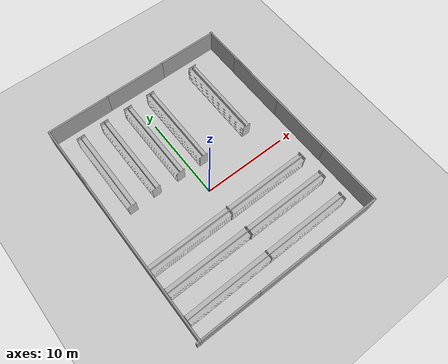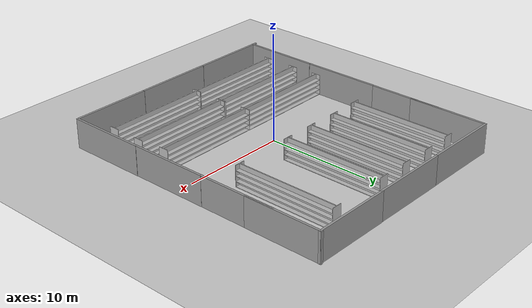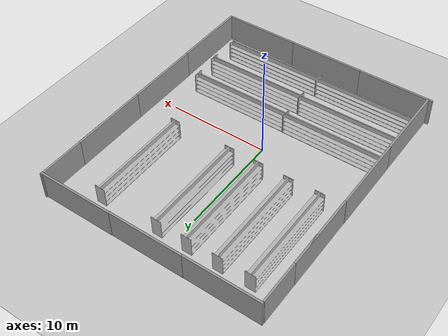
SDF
<sdf version="1.6">
 <world name="default">
  <light name="sun" type="directional">
   <pose>0 0 10 0 -0 0</pose>
   <diffuse>0.8 0.8 0.8 1</diffuse>
   <specular>0.1 0.1 0.1 1</specular>
   <attenuation>
    <range>1000</range>
    <constant>0.9</constant>
    <linear>0.01</linear>
    <quadratic>0.001</quadratic>
   </attenuation>
   <direction>-0.5 0.5 -1</direction>
  </light>
  <model name="ground_plane">
   <static>1</static>
   <link name="link">
    <collision name="collision">
     <geometry><plane><normal>0 0 1</normal><size>100 100</size></plane></geometry>
     <surface><friction><ode><mu>100</mu><mu2>50</mu2></ode></friction></surface>
    </collision>
    <visual name="visual">
     <cast_shadows>0</cast_shadows>
     <geometry><plane><normal>0 0 1</normal><size>100 100</size></plane></geometry>
     <material>
      <script><uri>file://media/materials/scripts/gazebo.material</uri><name>Gazebo/Grey</name></script>
     </material>
    </visual>
    <velocity_decay><linear>0</linear><angular>0</angular></velocity_decay>
   </link>
  </model>
  <physics type="ode">
   <max_step_size>0.01</max_step_size>
   <real_time_factor>1</real_time_factor>
   <real_time_update_rate>100</real_time_update_rate>
   <gravity>0 0 -9.8</gravity>
  </physics>
  <scene><ambient>0.4 0.4 0.4 1</ambient><background>0.7 0.7 0.7 1</background><shadows>1</shadows></scene>
  <model name="shelf_new_0">
   <static>1</static>
   <link name="link">
    <collision name="collision">
     <pose>0.5 5 1 0 -0 0</pose>
     <geometry><box><size>1 10 2</size></box></geometry>
    </collision>
    <visual name="visual">
     <geometry><mesh><uri>model://shelf/meshes/shelf_new.dae</uri><scale>1 1 1</scale></mesh></geometry>
    </visual>
   </link>
   <pose>1.01526 2.93708 0 0 -0 0</pose>
  </model>
  <model name="shelf_new_1">
   <static>1</static>
   <link name="link">
    <collision name="collision">
     <pose>0.5 5 1 0 -0 0</pose>
     <geometry><box><size>1 10 2</size></box></geometry>
    </collision>
    <visual name="visual">
     <geometry><mesh><uri>model://shelf/meshes/shelf_new.dae</uri><scale>1 1 1</scale></mesh></geometry>
    </visual>
   </link>
   <pose>-2.02885 2.93645 0 0 -0 0</pose>
  </model>
  <model name="shelf_new_2">
   <static>1</static>
   <link name="link">
    <collision name="collision">
     <pose>0.5 5 1 0 -0 0</pose>
     <geometry><box><size>1 10 2</size></box></geometry>
    </collision>
    <visual name="visual">
     <geometry><mesh><uri>model://shelf/meshes/shelf_new.dae</uri><scale>1 1 1</scale></mesh></geometry>
    </visual>
   </link>
   <pose>-5.10978 2.97207 0 0 -0 0</pose>
  </model>
  <model name="shelf_new_3">
   <static>1</static>
   <link name="link">
    <collision name="collision">
     <pose>0.5 5 1 0 -0 0</pose>
     <geometry><box><size>1 10 2</size></box></geometry>
    </collision>
    <visual name="visual">
     <geometry><mesh><uri>model://shelf/meshes/shelf_new.dae</uri><scale>1 1 1</scale></mesh></geometry>
    </visual>
   </link>
   <pose>-8.15587 2.89897 0 0 -0 0</pose>
  </model>
  <model name="shelf_new_4">
   <static>1</static>
   <link name="link">
    <collision name="collision">
     <pose>0.5 5 1 0 -0 0</pose>
     <geometry><box><size>1 10 2</size></box></geometry>
    </collision>
    <visual name="visual">
     <geometry><mesh><uri>model://shelf/meshes/shelf_new.dae</uri><scale>1 1 1</scale></mesh></geometry>
    </visual>
   </link>
   <pose>6.9904 2.97347 0 0 -0 0</pose>
  </model>
  <model name="shelf_new_5">
   <static>1</static>
   <link name="link">
    <collision name="collision">
     <pose>0.5 5 1 0 -0 0</pose>
     <geometry><box><size>1 10 2</size></box></geometry>
    </collision>
    <visual name="visual">
     <geometry><mesh><uri>model://shelf/meshes/shelf_new.dae</uri><scale>1 1 1</scale></mesh></geometry>
    </visual>
   </link>
   <pose>0.066395 -9.89739 0 0 -0 1.57922</pose>
  </model>
  <model name="shelf_new_5_clone">
   <static>1</static>
   <link name="link">
    <collision name="collision">
     <pose>0.5 5 1 0 -0 0</pose>
     <geometry><box><size>1 10 2</size></box></geometry>
    </collision>
    <visual name="visual">
     <geometry><mesh><uri>model://shelf/meshes/shelf_new.dae</uri><scale>1 1 1</scale></mesh></geometry>
    </visual>
   </link>
   <pose>10.0529 -9.81999 0 0 -0 1.57922</pose>
  </model>
  <model name="shelf_new_5_clone_0">
   <static>1</static>
   <link name="link">
    <collision name="collision">
     <pose>0.5 5 1 0 -0 0</pose>
     <geometry><box><size>1 10 2</size></box></geometry>
    </collision>
    <visual name="visual">
     <geometry><mesh><uri>model://shelf/meshes/shelf_new.dae</uri><scale>1 1 1</scale></mesh></geometry>
    </visual>
   </link>
   <pose>0.025884 -6.78234 0 0 -0 1.57922</pose>
  </model>
  <model name="shelf_new_5_clone_1">
   <static>1</static>
   <link name="link">
    <collision name="collision">
     <pose>0.5 5 1 0 -0 0</pose>
     <geometry><box><size>1 10 2</size></box></geometry>
    </collision>
    <visual name="visual">
     <geometry><mesh><uri>model://shelf/meshes/shelf_new.dae</uri><scale>1 1 1</scale></mesh></geometry>
    </visual>
   </link>
   <pose>10.0783 -6.75893 0 0 -0 1.57922</pose>
  </model>
  <model name="shelf_new_5_clone_0_clone">
   <static>1</static>
   <link name="link">
    <collision name="collision">
     <pose>0.5 5 1 0 -0 0</pose>
     <geometry><box><size>1 10 2</size></box></geometry>
    </collision>
    <visual name="visual">
     <geometry><mesh><uri>model://shelf/meshes/shelf_new.dae</uri><scale>1 1 1</scale></mesh></geometry>
    </visual>
   </link>
   <pose>-0.082345 -3.97029 0 0 -0 1.57922</pose>
  </model>
  <model name="shelf_new_5_clone_0_clone_0">
   <static>1</static>
   <link name="link">
    <collision name="collision">
     <pose>0.5 5 1 0 -0 0</pose>
     <geometry><box><size>1 10 2</size></box></geometry>
    </collision>
    <visual name="visual">
     <geometry><mesh><uri>model://shelf/meshes/shelf_new.dae</uri><scale>1 1 1</scale></mesh></geometry>
    </visual>
   </link>
   <pose>9.84187 -3.92369 0 0 -0 1.57922</pose>
  </model>
  <model name="grey_wall">
   <static>1</static>
   <link name="link">
    <pose>0 0 1.4 0 -0 0</pose>
    <collision name="collision"><geometry><box><size>7.5 0.2 2.8</size></box></geometry></collision>
    <visual name="visual">
     <cast_shadows>0</cast_shadows>
     <geometry><box><size>7.5 0.2 2.8</size></box></geometry>
     <material>
      <script>
       <uri>model://grey_wall/materials/scripts</uri>
       <uri>model://grey_wall/materials/textures</uri>
       <name>vrc/grey_wall</name>
      </script>
     </material>
    </visual>
   </link>
   <pose>8.16119 -11.7288 0 0 -0 0</pose>
  </model>
  <model name="grey_wall_0">
   <static>1</static>
   <link name="link">
    <pose>0 0 1.4 0 -0 0</pose>
    <collision name="collision"><geometry><box><size>7.5 0.2 2.8</size></box></geometry></collision>
    <visual name="visual">
     <cast_shadows>0</cast_shadows>
     <geometry><box><size>7.5 0.2 2.8</size></box></geometry>
     <material>
      <script>
       <uri>model://grey_wall/materials/scripts</uri>
       <uri>model://grey_wall/materials/textures</uri>
       <name>vrc/grey_wall</name>
      </script>
     </material>
    </visual>
   </link>
   <pose>0.649733 -11.7325 0 0 -0 0</pose>
  </model>
  <model name="grey_wall_1">
   <static>1</static>
   <link name="link">
    <pose>0 0 1.4 0 -0 0</pose>
    <collision name="collision"><geometry><box><size>7.5 0.2 2.8</size></box></geometry></collision>
    <visual name="visual">
     <cast_shadows>0</cast_shadows>
     <geometry><box><size>7.5 0.2 2.8</size></box></geometry>
     <material>
      <script>
       <uri>model://grey_wall/materials/scripts</uri>
       <uri>model://grey_wall/materials/textures</uri>
       <name>vrc/grey_wall</name>
      </script>
     </material>
    </visual>
   </link>
   <pose>-6.81572 -11.7224 0 0 -0 0</pose>
  </model>
  <model name="grey_wall_2">
   <static>1</static>
   <link name="link">
    <pose>0 0 1.4 0 -0 0</pose>
    <collision name="collision"><geometry><box><size>7.5 0.2 2.8</size></box></geometry></collision>
    <visual name="visual">
     <cast_shadows>0</cast_shadows>
     <geometry><box><size>7.5 0.2 2.8</size></box></geometry>
     <material>
      <script>
       <uri>model://grey_wall/materials/scripts</uri>
       <uri>model://grey_wall/materials/textures</uri>
       <name>vrc/grey_wall</name>
      </script>
     </material>
    </visual>
   </link>
   <pose>-10.1337 -8.09513 0 0 0 -1.56966</pose>
  </model>
  <model name="grey_wall_2_clone">
   <static>1</static>
   <link name="link">
    <pose>0 0 1.4 0 -0 0</pose>
    <collision name="collision"><geometry><box><size>7.5 0.2 2.8</size></box></geometry></collision>
    <visual name="visual">
     <cast_shadows>0</cast_shadows>
     <geometry><box><size>7.5 0.2 2.8</size></box></geometry>
     <material>
      <script>
       <uri>model://grey_wall/materials/scripts</uri>
       <uri>model://grey_wall/materials/textures</uri>
       <name>vrc/grey_wall</name>
      </script>
     </material>
    </visual>
   </link>
   <pose>-10.1476 -0.594839 0 0 0 -1.56966</pose>
  </model>
  <model name="grey_wall_2_clone_0">
   <static>1</static>
   <link name="link">
    <pose>0 0 1.4 0 -0 0</pose>
    <collision name="collision"><geometry><box><size>7.5 0.2 2.8</size></box></geometry></collision>
    <visual name="visual">
     <cast_shadows>0</cast_shadows>
     <geometry><box><size>7.5 0.2 2.8</size></box></geometry>
     <material>
      <script>
       <uri>model://grey_wall/materials/scripts</uri>
       <uri>model://grey_wall/materials/textures</uri>
       <name>vrc/grey_wall</name>
      </script>
     </material>
    </visual>
   </link>
   <pose>-10.1359 6.89422 0 0 0 -1.56966</pose>
  </model>
  <model name="grey_wall_2_clone_1">
   <static>1</static>
   <link name="link">
    <pose>0 0 1.4 0 -0 0</pose>
    <collision name="collision"><geometry><box><size>7.5 0.2 2.8</size></box></geometry></collision>
    <visual name="visual">
     <cast_shadows>0</cast_shadows>
     <geometry><box><size>7.5 0.2 2.8</size></box></geometry>
     <material>
      <script>
       <uri>model://grey_wall/materials/scripts</uri>
       <uri>model://grey_wall/materials/textures</uri>
       <name>vrc/grey_wall</name>
      </script>
     </material>
    </visual>
   </link>
   <pose>-10.1356 11.0566 0 0 0 -1.56966</pose>
  </model>
  <model name="grey_wall_2_clone_1_clone">
   <static>1</static>
   <link name="link">
    <pose>0 0 1.4 0 -0 0</pose>
    <collision name="collision"><geometry><box><size>7.5 0.2 2.8</size></box></geometry></collision>
    <visual name="visual">
     <cast_shadows>0</cast_shadows>
     <geometry><box><size>7.5 0.2 2.8</size></box></geometry>
     <material>
      <script>
       <uri>model://grey_wall/materials/scripts</uri>
       <uri>model://grey_wall/materials/textures</uri>
       <name>vrc/grey_wall</name>
      </script>
     </material>
    </visual>
   </link>
   <pose>11.9236 -8.05333 0 0 0 -1.56966</pose>
  </model>
  <model name="grey_wall_2_clone_1_clone_0">
   <static>1</static>
   <link name="link">
    <pose>0 0 1.4 0 -0 0</pose>
    <collision name="collision"><geometry><box><size>7.5 0.2 2.8</size></box></geometry></collision>
    <visual name="visual">
     <cast_shadows>0</cast_shadows>
     <geometry><box><size>7.5 0.2 2.8</size></box></geometry>
     <material>
      <script>
       <uri>model://grey_wall/materials/scripts</uri>
       <uri>model://grey_wall/materials/textures</uri>
       <name>vrc/grey_wall</name>
      </script>
     </material>
    </visual>
   </link>
   <pose>11.8922 -0.641021 0 0 0 -1.56966</pose>
  </model>
  <model name="grey_wall_2_clone_1_clone_1">
   <static>1</static>
   <link name="link">
    <pose>0 0 1.4 0 -0 0</pose>
    <collision name="collision"><geometry><box><size>7.5 0.2 2.8</size></box></geometry></collision>
    <visual name="visual">
     <cast_shadows>0</cast_shadows>
     <geometry><box><size>7.5 0.2 2.8</size></box></geometry>
     <material>
      <script>
       <uri>model://grey_wall/materials/scripts</uri>
       <uri>model://grey_wall/materials/textures</uri>
       <name>vrc/grey_wall</name>
      </script>
     </material>
    </visual>
   </link>
   <pose>11.8756 6.74603 0 0 0 -1.56966</pose>
  </model>
  <model name="grey_wall_3">
   <static>1</static>
   <link name="link">
    <pose>0 0 1.4 0 -0 0</pose>
    <collision name="collision"><geometry><box><size>7.5 0.2 2.8</size></box></geometry></collision>
    <visual name="visual">
     <cast_shadows>0</cast_shadows>
     <geometry><box><size>7.5 0.2 2.8</size></box></geometry>
     <material>
      <script>
       <uri>model://grey_wall/materials/scripts</uri>
       <uri>model://grey_wall/materials/textures</uri>
       <name>vrc/grey_wall</name>
      </script>
     </material>
    </visual>
   </link>
   <pose>-6.47366 14.9151 0 0 -0 0</pose>
  </model>
  <model name="grey_wall_4">
   <static>1</static>
   <link name="link">
    <pose>0 0 1.4 0 -0 0</pose>
    <collision name="collision"><geometry><box><size>7.5 0.2 2.8</size></box></geometry></collision>
    <visual name="visual">
     <cast_shadows>0</cast_shadows>
     <geometry><box><size>7.5 0.2 2.8</size></box></geometry>
     <material>
      <script>
       <uri>model://grey_wall/materials/scripts</uri>
       <uri>model://grey_wall/materials/textures</uri>
       <name>vrc/grey_wall</name>
      </script>
     </material>
    </visual>
   </link>
   <pose>0.951752 14.9344 0 0 -0 0</pose>
  </model>
  <model name="grey_wall_5">
   <static>1</static>
   <link name="link">
    <pose>0 0 1.4 0 -0 0</pose>
    <collision name="collision"><geometry><box><size>7.5 0.2 2.8</size></box></geometry></collision>
    <visual name="visual">
     <cast_shadows>0</cast_shadows>
     <geometry><box><size>7.5 0.2 2.8</size></box></geometry>
     <material>
      <script>
       <uri>model://grey_wall/materials/scripts</uri>
       <uri>model://grey_wall/materials/textures</uri>
       <name>vrc/grey_wall</name>
      </script>
     </material>
    </visual>
   </link>
   <pose>8.25779 14.9594 0 0 -0 0</pose>
  </model>
  <model name="grey_wall_2_clone_1_clone_1_clone">
   <static>1</static>
   <link name="link">
    <pose>0 0 1.4 0 -0 0</pose>
    <collision name="collision"><geometry><box><size>7.5 0.2 2.8</size></box></geometry></collision>
    <visual name="visual">
     <cast_shadows>0</cast_shadows>
     <geometry><box><size>7.5 0.2 2.8</size></box></geometry>
     <material>
      <script>
       <uri>model://grey_wall/materials/scripts</uri>
       <uri>model://grey_wall/materials/textures</uri>
       <name>vrc/grey_wall</name>
      </script>
     </material>
    </visual>
   </link>
   <pose>11.8829 11.3946 0 0 0 -1.56966</pose>
  </model>
 </world>
</sdf>
